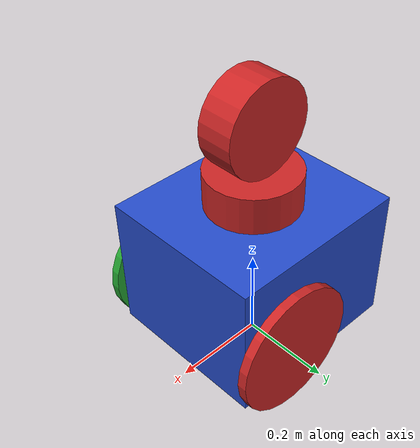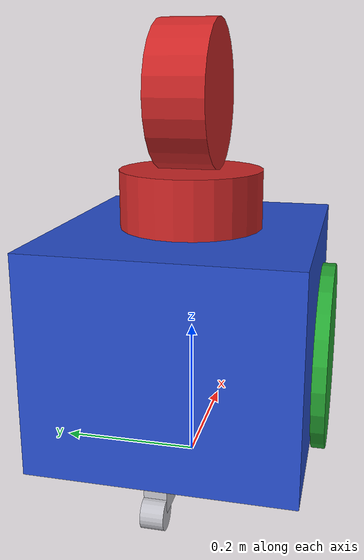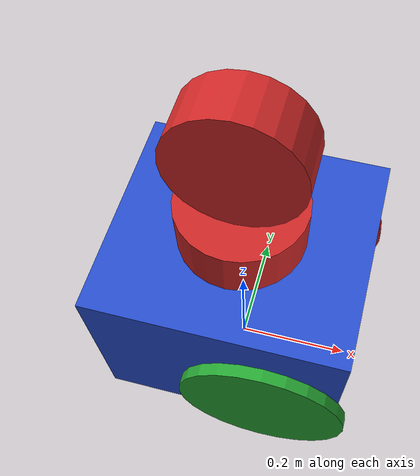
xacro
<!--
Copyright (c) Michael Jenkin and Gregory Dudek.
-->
<?xml version="1.0"?>

<robot name="$(arg name)" xmlns:xacro="http://www.ros.org/wiki/xacro">

  <!-- Define the robot -->
  <xacro:property name="robot_base_width" value="0.36" />
  <xacro:property name="robot_base_length" value="0.4" />
  <xacro:property name="robot_base_height" value="0.3" />
  <xacro:property name="robot_base_mass" value="4.5" />
  <xacro:property name="robot_sonar_radius" value="0.18" />
  <xacro:property name="robot_sonar_height" value="0.08" />
  <xacro:property name="robot_wheel_zoffset" value="-0.06" />
  <xacro:property name="robot_wheel_xoffset" value="0.08" />
  <xacro:property name="robot_wheel_radius" value="0.14" />
  <xacro:property name="robot_wheel_width" value="0.02" />
  <xacro:property name="robot_caster_link_height" value="0.03" />
  <xacro:property name="robot_caster_link_width" value="0.03" />
  <xacro:property name="robot_caster_link_length" value="0.05" />
  <xacro:property name="robot_caster_link_offset" value="-0.025" />
  <xacro:property name="robot_caster_joint_offset" value="-0.15" />
  <xacro:property name="robot_caster_wheel_radius" value="0.02" />
  <xacro:property name="robot_laser_radius" value="0.1" />
  <xacro:property name="robot_laser_height" value="0.08" />

  <!-- Import colors defined externally -->
  <xacro:include filename="$(find simulation)/colors.xacro" />

  <!-- Define macros to make moments of inertia easier -->
  <xacro:macro name="I_cylinder" params="m r h">
    <inertial>
      <mass value="${m}" />
      <inertia  ixx="${m*(3*r*r+h*h)/12}" iyy="${m*(3*r*r+h*h)/12}" izz="${m*r*r/2}"
              ixy = "0" ixz = "0" iyz = "0" />
    </inertial>
  </xacro:macro>
  <xacro:macro name="I_cuboid" params="m x y z">
    <inertial>
      <mass value="${m}" />
      <inertia  ixx="${m*(y*y+z*z)/12}" iyy="${m*(x*x+z*z)/12}" izz="${m*(x*x+z*z)/12}"
                ixy = "0" ixz = "0" iyz = "0" />
    </inertial>
  </xacro:macro>

  <!-- robot footprint -->
  <link name="base_footprint">
  </link>

  <!-- Base -->
  <gazebo reference="base_link">
    <material>Gazebo/Blue</material>
  </gazebo>
  <link name="base_link">
    <visual>
      <geometry>
        <box size="${robot_base_length} ${robot_base_width} ${robot_base_height}" />
      </geometry>
      <material name="blue"/>
    </visual>
    <collision>
      <geometry>
        <box size="${robot_base_length} ${robot_base_width} ${robot_base_height}" />
      </geometry>
    </collision>
    <xacro:I_cuboid m="8.4" x="${robot_base_length}" y="${robot_base_width}" z="${robot_base_height}" />
  </link>

  <joint name="base_joint" type="fixed">
    <origin xyz="0.0 0.0 ${robot_wheel_radius-robot_wheel_zoffset}" rpy="0.0 0.0 0.0" />
    <parent link="base_footprint" />
    <child link="base_link" />
    <axis xyz="0 0 1" />
  </joint>

  <!-- Laser unit 1 -->
  <gazebo reference="laser_link_1">
    <material>Gazebo/Red</material>
  </gazebo>
  <link name="laser_link_1">
    <visual>
      <geometry>
        <cylinder length="${robot_laser_height}" radius="${robot_laser_radius}" />
      </geometry>
      <material name="red"/>
    </visual>
    <collision>
      <geometry>
        <cylinder length="${robot_laser_height}" radius="${robot_laser_radius}" />
      </geometry>
    </collision>
    <xacro:I_cylinder m="0.1" r="${robot_laser_radius}" h="${robot_laser_height}" />
  </link>

  <joint name="laser_joint_1" type="fixed">
    <origin xyz="0.0 0.0 ${robot_base_height/2 + robot_laser_height/2}" rpy="0.0 0.0 0.0" />
    <parent link="base_link" />
    <child link="laser_link_1" />
    <axis xyz="0 0 1" />
  </joint>

  <gazebo reference="laser_link_1">
    <static>true</static>
    <sensor type="ray" name="laser_1">
      <pose>0 0 0 0 0 0</pose>
      <visualize>true</visualize>
      <update_rate>10</update_rate>
      <ray>
        <scan>
          <horizontal>
            <samples>360</samples>
            <resolution>1</resolution>
            <min_angle>-3.1415</min_angle>
            <max_angle>3.1240</max_angle>
          </horizontal>
        </scan>
        <range>
          <min>0.20</min>
          <max>10.0</max>
          <resolution>0.01</resolution>
        </range>
      </ray>
      <plugin name="laser_controller_1" filename="libgazebo_ros_ray_sensor.so">
        <ros>
          <namespace>/</namespace>
          <remapping>~/out:=horizontal_scan</remapping>
        </ros>
        <frameName>laser_link</frameName>
        <output_type>sensor_msgs/LaserScan</output_type>
      </plugin>
    </sensor>
  </gazebo>

  <!-- Laser unit 2 -->
  <gazebo reference="laser_link_2">
    <material>Gazebo/Red</material>
  </gazebo>
  <link name="laser_link_2">
    <visual>
      <geometry>
        <cylinder length="${robot_laser_height}" radius="${robot_laser_radius}" />
      </geometry>
      <material name="red"/>
    </visual>
    <collision>
      <geometry>
        <cylinder length="${robot_laser_height}" radius="${robot_laser_radius}" />
      </geometry>
    </collision>
    <xacro:I_cylinder m="0.1" r="${robot_laser_radius}" h="${robot_laser_height}" />
  </link>

  <joint name="laser_joint_2" type="fixed">
    <origin xyz="0.0 0.0 ${robot_laser_height/2 + robot_laser_radius}" rpy="1.570796 0.0 0.0" />
    <parent link="laser_link_1" />
    <child link="laser_link_2" />
    <axis xyz="0 0 1" />
  </joint>

  <gazebo reference="laser_link_2">
    <static>true</static>
    <sensor type="ray" name="laser_2">
      <pose>0 0 0 0 0 0</pose>
      <visualize>true</visualize>
      <update_rate>10</update_rate>
      <ray>
        <scan>
          <horizontal>
            <samples>360</samples>
            <resolution>1</resolution>
            <min_angle>-3.1415</min_angle>
            <max_angle>3.1240</max_angle>
          </horizontal>
        </scan>
        <range>
          <min>0.20</min>
          <max>10.0</max>
          <resolution>0.01</resolution>
        </range>
      </ray>
      <plugin name="laser_controller_2" filename="libgazebo_ros_ray_sensor.so">
        <ros>
          <namespace>/</namespace>
          <remapping>~/out:=vertical_scan</remapping>
        </ros>
        <frameName>laser_link</frameName>
        <output_type>sensor_msgs/LaserScan</output_type>
      </plugin>
    </sensor>
  </gazebo>

  <!-- IMU -->
  <link name="imu_link">
    <inertial>
      <pose>0 0 0 0 0 0</pose>
      <mass value="0.001"/>
      <inertia ixx="0.000001" ixy="0" ixz="0" iyy="0.000001" iyz="0" izz="0.000001"/>
    </inertial>
    <visual>
      <geometry>
        <box size="0.01 0.01 0.01"/>
      </geometry>
      <material name="Red">
        <color rgba="0.5 0 0 1"/>
      </material>
    </visual>
  </link>

  <joint name="imu_joint" type="fixed">
    <parent link="base_link"/>
    <child link="imu_link"/>
    <origin xyz="0 0 0" rpy="0 0 0"/>
  </joint>

  <gazebo reference='imu_link'>
    <sensor name='robot_imu' type='imu'>
      <always_on>true</always_on>
      <update_rate>20</update_rate>
      <visualize>false</visualize>
      <plugin filename='libgazebo_ros_imu_sensor.so' name='imu_sensor'>
        <topicName>imu_data</topicName>
        <ros>
          <namespace>/</namespace>
          <remapping>~/out:=imu_data</remapping>
        </ros>
        <frameName>robot_imu</frameName>
        <output_type>sensor_msgs/Imu</output_type>
        <initial_orientation_as_reference>false</initial_orientation_as_reference>
      </plugin>
    </sensor>
  </gazebo>

  <!-- Left wheel -->
  <gazebo reference="left_wheel_link">
    <material>Gazebo/Red</material>
  </gazebo>
  <link name="left_wheel_link">
    <visual>
      <geometry>
        <cylinder length="${robot_wheel_width}" radius="${robot_wheel_radius}" />
      </geometry>
      <material name="red" />
    </visual>
    <collision>
      <geometry>
        <cylinder length="${robot_wheel_width}" radius="${robot_wheel_radius}" />
      </geometry>
    </collision>
    <xacro:I_cylinder m="0.1" r="${robot_wheel_radius}" h="${robot_wheel_width}" />
  </link>

  <joint name="left_wheel_joint" type="continuous">
    <axis xyz="0 0 1" />
    <parent link="base_link" />
    <child link="left_wheel_link" />
    <origin rpy="-1.5708 0 0" xyz="${robot_wheel_xoffset} ${robot_base_width/2+robot_wheel_width/2} ${robot_wheel_zoffset}" />
  </joint>

  <!-- Right wheel -->
  <gazebo reference="right_wheel_link">
    <material>Gazebo/Green</material>
  </gazebo>
  <link name="right_wheel_link">
    <visual>
      <geometry>
        <cylinder length="${robot_wheel_width}" radius="${robot_wheel_radius}" />
      </geometry>
      <material name="green" />
    </visual>
    <collision>
      <geometry>
        <cylinder length="${robot_wheel_width}" radius="${robot_wheel_radius}" />
      </geometry>
    </collision>
    <xacro:I_cylinder m="0.1" r="${robot_wheel_radius}" h="${robot_wheel_width}" />
  </link>

  <joint name="right_wheel_joint" type="continuous">
    <axis xyz="0 0 1" />
    <parent link="base_link" />
    <child link="right_wheel_link" />
    <origin rpy="-1.5708 0 0" xyz="${robot_wheel_xoffset} ${-robot_base_width/2-robot_wheel_width/2} ${robot_wheel_zoffset}" />
  </joint>

  <!-- Caster 'wheel' structure -->
  <gazebo reference="caster_link">
    <material>Gazebo/Silver</material>
  </gazebo>

  <link name="caster_link">
    <visual>
      <origin xyz="${robot_caster_link_length/2} 0 0" rpy="0 0 0" />
      <geometry>
        <box size="${robot_caster_link_length} ${robot_caster_link_width} ${robot_caster_link_height}" />
      </geometry>
      <material name="silver"/>
    </visual>
    <collision>
      <origin xyz="${robot_caster_link_length/2} 0 0" rpy="0 0 0" />
      <geometry>
        <box size="${robot_caster_link_length} ${robot_caster_link_width} ${robot_caster_link_height}" />
      </geometry>
    </collision>
    <xacro:I_cuboid m="0.1" x="${robot_caster_link_length}" y="${robot_caster_link_width}" z="${robot_caster_link_height}" />
  </link>

  <joint name="caster_joint" type="continuous">
    <axis xyz="0 0 1" />
    <parent link="base_link" />
    <child link="caster_link" />
    <origin rpy="0 0 3.1415" xyz="${robot_caster_joint_offset} 0 ${-robot_base_height/2-robot_caster_link_height/2}" />
  </joint>

  <!-- caster wheel -->
  <gazebo reference="caster_wheel_link">
    <material>Gazebo/Silver</material>
  </gazebo>
  <link name="caster_wheel_link">
    <visual>
      <geometry>
        <cylinder length="${robot_caster_link_height}" radius="${robot_caster_wheel_radius}" />
      </geometry>
      <material name="silver" />
    </visual>
    <collision>
      <geometry>
        <cylinder length="${robot_caster_link_height}" radius="${robot_caster_wheel_radius}" />
      </geometry>
    </collision>
    <xacro:I_cylinder m="0.1" r="${robot_caster_wheel_radius}" h="${robot_caster_link_height}" />
  </link>

  <joint name="caster_wheel_joint" type="continuous">
    <axis xyz="0 0 1" />
    <child link="caster_wheel_link" />
    <parent link="caster_link" />
    <origin rpy="1.5708 0 0" xyz="${robot_caster_link_length} 0 ${-robot_caster_link_height/2}" />
  </joint>

  <gazebo>
    <plugin name="joint_state_publisher" filename="libgazebo_ros_joint_state_publisher.so">
      <joint_name>caster_wheel_joint</joint_name>
      <joint_name>caster_joint</joint_name>
      <joint_name>left_wheel_joint</joint_name>
      <joint_name>right_wheel_joint</joint_name>
    </plugin>
  </gazebo>

  <gazebo>
    <plugin name="differential_drive_controller" filename="libgazebo_ros_diff_drive.so">
      <update_rate>20</update_rate>
      <left_joint>left_wheel_joint</left_joint>
      <right_joint>right_wheel_joint</right_joint>
      <robotBaseFrame>base_footprint</robotBaseFrame>
      <wheel_separation>${robot_base_width+robot_wheel_width}</wheel_separation>
      <wheel_diameter>${2*robot_wheel_radius}</wheel_diameter>
      <publish_odom>true</publish_odom>
      <publish_odom_tf>true</publish_odom_tf>
      <publish_wheel_tf>true</publish_wheel_tf>
      <odometry_frame>odom</odometry_frame>
      <robot_base_frame>base_footprint</robot_base_frame>
      <command_topic>cmd_vel</command_topic>
    </plugin>
  </gazebo>
</robot>
